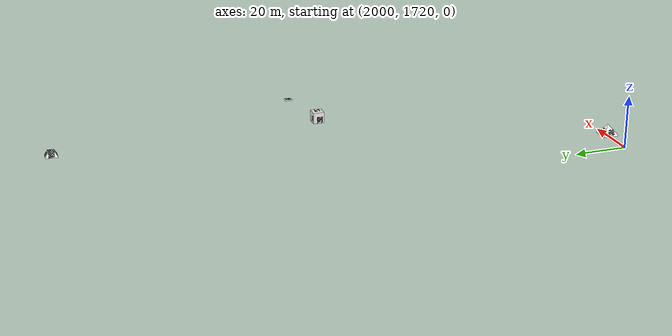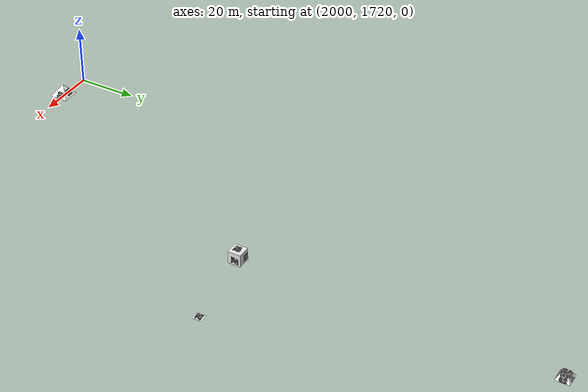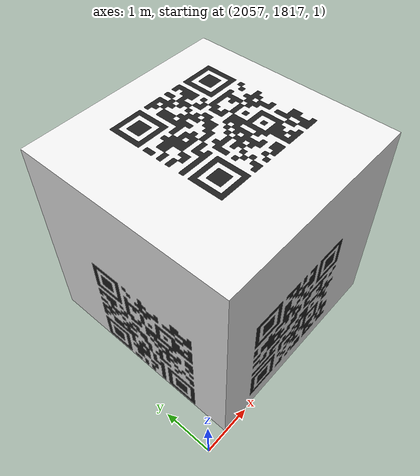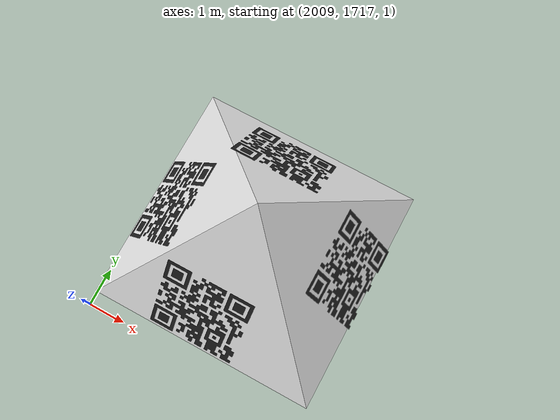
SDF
<sdf version="1.7">
 <world name="default">
  <physics name="default_physics" default="0" type="ode">
   <ode>
    <solver>
     <type>quick</type>
     <iters>100</iters>
     <sor>1</sor>
     <use_dynamic_moi_rescaling>0</use_dynamic_moi_rescaling>
    </solver>
    <constraints>
     <cfm>0</cfm>
     <erp>0.2</erp>
     <contact_max_correcting_vel>0.1</contact_max_correcting_vel>
     <contact_surface_layer>0</contact_surface_layer>
    </constraints>
   </ode>
   <real_time_update_rate>400</real_time_update_rate>
   <max_step_size>0.0025</max_step_size>
   <real_time_factor>1</real_time_factor>
  </physics>
  <scene>
   <sky><clouds><speed>5</speed></clouds></sky>
   <ambient>0.95 0.95 0.95 1</ambient>
   <background>0.3 0.3 0.3 1</background>
   <shadows>1</shadows>
  </scene>
  <gravity>0 0 -9.8</gravity>
  <magnetic_field>6e-06 2.3e-05 -4.2e-05</magnetic_field>
  <atmosphere type="adiabatic"/>
  <audio><device>default</device></audio>
  <spherical_coordinates>
   <surface_model>EARTH_WGS84</surface_model>
   <latitude_deg>0</latitude_deg>
   <longitude_deg>0</longitude_deg>
   <elevation>0</elevation>
   <heading_deg>0</heading_deg>
  </spherical_coordinates>
  <model name="cube_qr_added">
   <pose>2057.46 1817.02 1 0 -0 0</pose>
   <static>1</static>
   <link name="link">
    <visual name="visual">
     <geometry>
      <mesh><scale>2 2 2</scale><uri>model://cube_qr_added/meshes/cube_qr_added.dae</uri></mesh>
     </geometry>
     <material><script><name>Gazebo/White</name><uri>__default__</uri></script></material>
    </visual>
   </link>
  </model>
  <model name="square_qr">
   <pose>2084.87 1821.16 1 0 -0 0</pose>
   <static>1</static>
   <link name="link">
    <visual name="visual">
     <geometry><mesh><uri>model://square_qr/meshes/square_qr.dae</uri></mesh></geometry>
     <material><script><name>Gazebo/White</name><uri>__default__</uri></script></material>
    </visual>
   </link>
  </model>
  <model name="piramid_qr_added">
   <pose>2008.94 1723.47 1 0 -0 0</pose>
   <static>1</static>
   <link name="link">
    <visual name="visual">
     <geometry>
      <mesh><scale>5 5 5</scale><uri>model://piramid_qr_added/meshes/piramid_qr_added.dae</uri></mesh>
     </geometry>
     <material><script><name>Gazebo/White</name><uri>__default__</uri></script></material>
    </visual>
   </link>
  </model>
  <model name="piramid_qr_cutted">
   <pose>2055.85 1917.85 1 0 -0 0</pose>
   <static>1</static>
   <link name="link">
    <visual name="visual">
     <geometry>
      <mesh><scale>3 3 3</scale><uri>model://piramid_qr_cutted/meshes/piramid_qr_cutted.dae</uri></mesh>
     </geometry>
     <material><script><name>Gazebo/White</name><uri>__default__</uri></script></material>
    </visual>
   </link>
  </model>
  <model name="teknofest_h">
   <pose>2058.14 1921.88 2.01862 -1.07261 0 0</pose>
   <static>1</static>
   <link name="link">
    <visual name="visual">
     <geometry><mesh><scale>3 3 1e-06</scale><uri>model://QR_12/meshes/teknofest_h.stl</uri></mesh></geometry>
     <material><script><name>Gazebo/Black</name><uri>__default__</uri></script></material>
    </visual>
   </link>
  </model>
  <model name="teknofest_h_0">
   <pose>2058.11 1920.15 3.05744 0 -0 0</pose>
   <static>1</static>
   <link name="link">
    <visual name="visual">
     <geometry><mesh><scale>3 3 1e-06</scale><uri>model://QR_12/meshes/teknofest_h.stl</uri></mesh></geometry>
     <material><script><name>Gazebo/Black</name><uri>__default__</uri></script></material>
    </visual>
   </link>
  </model>
  <model name="teknofest_h_1">
   <pose>2058.08 1918.41 2.12337 1.09939 -0 0</pose>
   <static>1</static>
   <link name="link">
    <visual name="visual">
     <geometry><mesh><scale>3 3 1e-06</scale><uri>model://QR_12/meshes/teknofest_h.stl</uri></mesh></geometry>
     <material><script><name>Gazebo/Black</name><uri>__default__</uri></script></material>
    </visual>
   </link>
  </model>
  <model name="teknofest_h_2">
   <pose>2056.38 1920.13 2.04592 0 -1.09274 0</pose>
   <static>1</static>
   <link name="link">
    <visual name="visual">
     <geometry><mesh><scale>3 3 1e-06</scale><uri>model://QR_12/meshes/teknofest_h.stl</uri></mesh></geometry>
     <material><script><name>Gazebo/Black</name><uri>__default__</uri></script></material>
    </visual>
   </link>
  </model>
  <model name="teknofest_h_3">
   <pose>2059.88 1920.2 2.01705 0 1.04273 0</pose>
   <static>1</static>
   <link name="link">
    <visual name="visual">
     <geometry><mesh><scale>3 3 1e-06</scale><uri>model://QR_12/meshes/teknofest_h.stl</uri></mesh></geometry>
     <material><script><name>Gazebo/Black</name><uri>__default__</uri></script></material>
    </visual>
   </link>
  </model>
  <model name="testucusu_m">
   <pose>2086.38 1822.73 1.2058 0 -0 0</pose>
   <static>1</static>
   <link name="link">
    <visual name="visual">
     <geometry><mesh><scale>3 3 1e-06</scale><uri>model://QR_06/meshes/testucusu_m.stl</uri></mesh></geometry>
     <material><script><name>Gazebo/Black</name><uri>__default__</uri></script></material>
    </visual>
   </link>
  </model>
  <model name="mustafakemalataturk_m">
   <pose>2059.62 1819.16 5.50298 0 -0 0</pose>
   <static>1</static>
   <link name="link">
    <visual name="visual">
     <geometry>
      <mesh><scale>3 3 1e-06</scale><uri>model://QR_14/meshes/mustafakemalataturk_m.stl</uri></mesh>
     </geometry>
     <material><script><name>Gazebo/Black</name><uri>__default__</uri></script></material>
    </visual>
   </link>
  </model>
  <model name="mustafakemalataturk_m_0">
   <pose>2058.8 1821.29 2.73692 1.5708 -0 0</pose>
   <static>1</static>
   <link name="link">
    <visual name="visual">
     <geometry>
      <mesh><scale>3 3 1e-06</scale><uri>model://QR_14/meshes/mustafakemalataturk_m.stl</uri></mesh>
     </geometry>
     <material><script><name>Gazebo/Black</name><uri>__default__</uri></script></material>
    </visual>
   </link>
  </model>
  <model name="mustafakemalataturk_m_1">
   <pose>2057.4 1818.82 2.36857 3.14159 -1.57079 3.14159</pose>
   <static>1</static>
   <link name="link">
    <visual name="visual">
     <geometry>
      <mesh><scale>3 3 1e-06</scale><uri>model://QR_14/meshes/mustafakemalataturk_m.stl</uri></mesh>
     </geometry>
     <material><script><name>Gazebo/Black</name><uri>__default__</uri></script></material>
    </visual>
   </link>
  </model>
  <model name="mustafakemalataturk_m_2">
   <pose>2059.16 1816.94 2.78986 1.5708 -0 0</pose>
   <static>1</static>
   <link name="link">
    <visual name="visual">
     <geometry>
      <mesh><scale>3 3 1e-06</scale><uri>model://QR_14/meshes/mustafakemalataturk_m.stl</uri></mesh>
     </geometry>
     <material><script><name>Gazebo/Black</name><uri>__default__</uri></script></material>
    </visual>
   </link>
  </model>
  <model name="mustafakemalataturk_m_3">
   <pose>2061.79 1819.38 2.6622 3.14159 -1.57079 3.14159</pose>
   <static>1</static>
   <link name="link">
    <visual name="visual">
     <geometry>
      <mesh><scale>3 3 1e-06</scale><uri>model://QR_14/meshes/mustafakemalataturk_m.stl</uri></mesh>
     </geometry>
     <material><script><name>Gazebo/Black</name><uri>__default__</uri></script></material>
    </visual>
   </link>
  </model>
  <model name="istikbalgoklerdedir_q">
   <pose>2011.73 1722.38 2.51239 -0.905158 0 0</pose>
   <static>1</static>
   <link name="link">
    <visual name="visual">
     <geometry>
      <mesh><scale>3 3 1e-06</scale><uri>model://QR_17/meshes/istikbalgoklerdedir_q.stl</uri></mesh>
     </geometry>
     <material><script><name>Gazebo/Black</name><uri>__default__</uri></script></material>
    </visual>
   </link>
  </model>
  <model name="istikbalgoklerdedir_q_0">
   <pose>2009.76 1720.12 2.30268 0 -0.921999 0</pose>
   <static>1</static>
   <link name="link">
    <visual name="visual">
     <geometry>
      <mesh><scale>3 3 1e-06</scale><uri>model://QR_17/meshes/istikbalgoklerdedir_q.stl</uri></mesh>
     </geometry>
     <material><script><name>Gazebo/Black</name><uri>__default__</uri></script></material>
    </visual>
   </link>
  </model>
  <model name="istikbalgoklerdedir_q_1">
   <pose>2014.39 1720.73 1.96979 0 0.915981 0</pose>
   <static>1</static>
   <link name="link">
    <visual name="visual">
     <geometry>
      <mesh><scale>3 3 1e-06</scale><uri>model://QR_17/meshes/istikbalgoklerdedir_q.stl</uri></mesh>
     </geometry>
     <material><script><name>Gazebo/Black</name><uri>__default__</uri></script></material>
    </visual>
   </link>
  </model>
  <model name="istikbalgoklerdedir_q_2">
   <pose>2011.71 1718.08 2.10607 0.941603 -0 0</pose>
   <static>1</static>
   <link name="link">
    <visual name="visual">
     <geometry>
      <mesh><scale>3 3 1e-06</scale><uri>model://QR_17/meshes/istikbalgoklerdedir_q.stl</uri></mesh>
     </geometry>
     <material><script><name>Gazebo/Black</name><uri>__default__</uri></script></material>
    </visual>
   </link>
  </model>
  <light name="sun" type="directional">
   <pose>1865.5 2039.39 10 0 -0 0</pose>
   <diffuse>0.8 0.8 0.8 1</diffuse>
   <specular>0.2 0.2 0.2 1</specular>
   <attenuation>
    <range>1000</range>
    <constant>0.9</constant>
    <linear>0.01</linear>
    <quadratic>0.001</quadratic>
   </attenuation>
   <direction>-0.5 0.1 -0.9</direction>
   <spot><inner_angle>0</inner_angle><outer_angle>0</outer_angle><falloff>0</falloff></spot>
  </light>
 </world>
</sdf>
